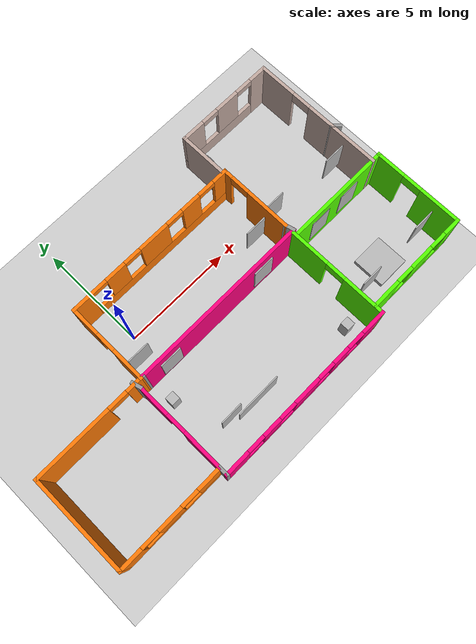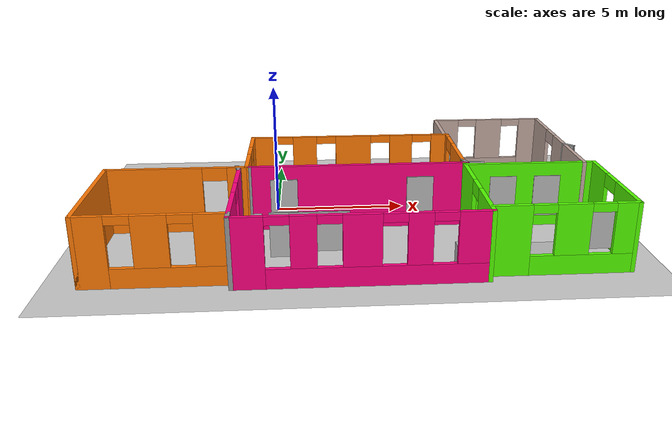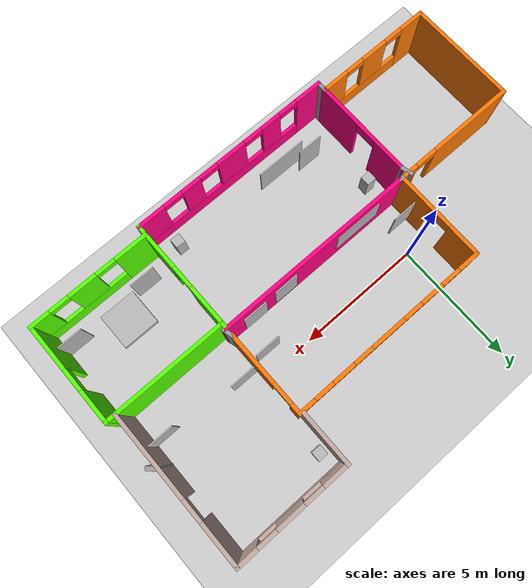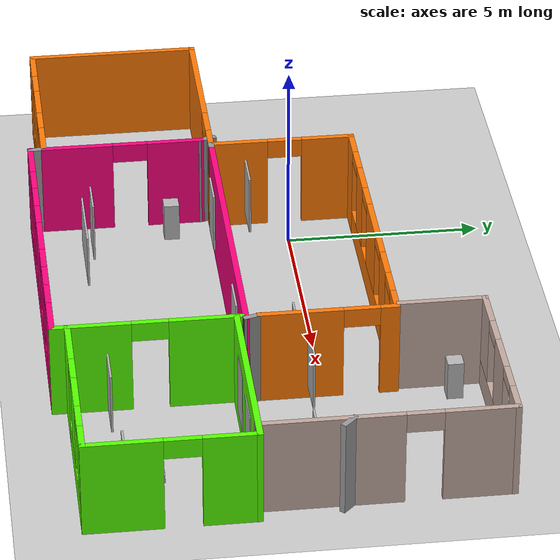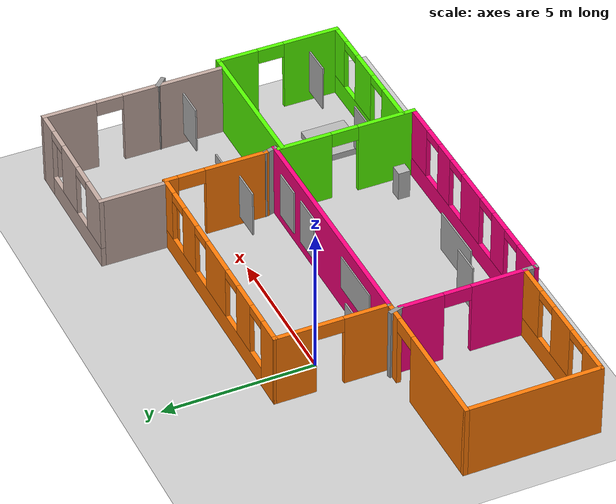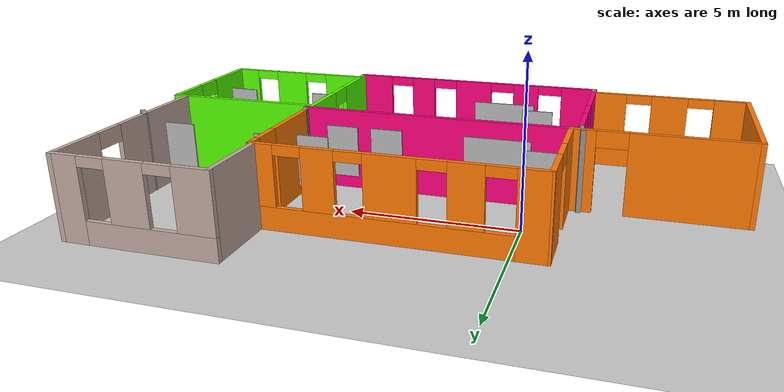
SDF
<sdf version="1.6">
 <world name="default">
  <model name="ground_plane">
   <static>1</static>
   <link name="link">
    <collision name="collision">
     <geometry><plane><normal>0 0 1</normal><size>100 100</size></plane></geometry>
     <surface><friction><ode><mu>100</mu><mu2>50</mu2></ode></friction></surface>
    </collision>
    <visual name="visual">
     <cast_shadows>0</cast_shadows>
     <geometry><plane><normal>0 0 1</normal><size>100 100</size></plane></geometry>
     <material>
      <script><uri>file://media/materials/scripts/gazebo.material</uri><name>Gazebo/Grey</name></script>
     </material>
    </visual>
   </link>
  </model>
  <model name="gallery2">
   <pose>17.6734 2.86394 0 0 -0 0</pose>
   <link name="Wall_0">
    <pose>-14.628 -1.09561 0 0 -0 0</pose>
    <visual name="Wall_0_Visual_0">
     <pose>-3.66723 0 1.25 0 -0 0</pose>
     <geometry><box><size>0.91554 0.15 2.5</size></box></geometry>
     <material>
      <script><uri>file://media/materials/scripts/gazebo.material</uri><name>Gazebo/Grey</name></script>
      <ambient>0.996078 0.47451 0.0196078 1</ambient>
     </material>
     <meta><layer>0</layer></meta>
    </visual>
    <collision name="Wall_0_Collision_0">
     <geometry><box><size>0.91554 0.15 2.5</size></box></geometry>
     <pose>-3.66723 0 1.25 0 -0 0</pose>
    </collision>
    <visual name="Wall_0_Visual_1">
     <pose>0.45777 0 0.35 0 -0 0</pose>
     <geometry><box><size>7.33446 0.15 0.7</size></box></geometry>
     <material>
      <script><uri>file://media/materials/scripts/gazebo.material</uri><name>Gazebo/Grey</name></script>
      <ambient>0.996078 0.47451 0.0196078 1</ambient>
     </material>
     <meta><layer>0</layer></meta>
    </visual>
    <collision name="Wall_0_Collision_1">
     <geometry><box><size>7.33446 0.15 0.7</size></box></geometry>
     <pose>0.45777 0 0.35 0 -0 0</pose>
    </collision>
    <visual name="Wall_0_Visual_2">
     <pose>-1.91944 0 1.6 0 -0 0</pose>
     <geometry><box><size>0.980046 0.15 1.8</size></box></geometry>
     <material>
      <script><uri>file://media/materials/scripts/gazebo.material</uri><name>Gazebo/Grey</name></script>
      <ambient>0.996078 0.47451 0.0196078 1</ambient>
     </material>
     <meta><layer>0</layer></meta>
    </visual>
    <collision name="Wall_0_Collision_2">
     <geometry><box><size>0.980046 0.15 1.8</size></box></geometry>
     <pose>-1.91944 0 1.6 0 -0 0</pose>
    </collision>
    <visual name="Wall_0_Visual_3">
     <pose>0.103342 0 1.6 0 -0 0</pose>
     <geometry><box><size>1.46551 0.15 1.8</size></box></geometry>
     <material>
      <script><uri>file://media/materials/scripts/gazebo.material</uri><name>Gazebo/Grey</name></script>
      <ambient>0.996078 0.47451 0.0196078 1</ambient>
     </material>
     <meta><layer>0</layer></meta>
    </visual>
    <collision name="Wall_0_Collision_3">
     <geometry><box><size>1.46551 0.15 1.8</size></box></geometry>
     <pose>0.103342 0 1.6 0 -0 0</pose>
    </collision>
    <visual name="Wall_0_Visual_4">
     <pose>2.10589 0 1.6 0 -0 0</pose>
     <geometry><box><size>0.93959 0.15 1.8</size></box></geometry>
     <material>
      <script><uri>file://media/materials/scripts/gazebo.material</uri><name>Gazebo/Grey</name></script>
      <ambient>0.996078 0.47451 0.0196078 1</ambient>
     </material>
     <meta><layer>0</layer></meta>
    </visual>
    <collision name="Wall_0_Collision_4">
     <geometry><box><size>0.93959 0.15 1.8</size></box></geometry>
     <pose>2.10589 0 1.6 0 -0 0</pose>
    </collision>
    <visual name="Wall_0_Visual_5">
     <pose>3.75034 0 1.6 0 -0 0</pose>
     <geometry><box><size>0.749312 0.15 1.8</size></box></geometry>
     <material>
      <script><uri>file://media/materials/scripts/gazebo.material</uri><name>Gazebo/Grey</name></script>
      <ambient>0.996078 0.47451 0.0196078 1</ambient>
     </material>
     <meta><layer>0</layer></meta>
    </visual>
    <collision name="Wall_0_Collision_5">
     <geometry><box><size>0.749312 0.15 1.8</size></box></geometry>
     <pose>3.75034 0 1.6 0 -0 0</pose>
    </collision>
    <visual name="Wall_0_Visual_6">
     <pose>-2.80946 0 2.35 0 -0 0</pose>
     <geometry><box><size>0.8 0.15 0.3</size></box></geometry>
     <material>
      <script><uri>file://media/materials/scripts/gazebo.material</uri><name>Gazebo/Grey</name></script>
      <ambient>0.996078 0.47451 0.0196078 1</ambient>
     </material>
     <meta><layer>0</layer></meta>
    </visual>
    <collision name="Wall_0_Collision_6">
     <geometry><box><size>0.8 0.15 0.3</size></box></geometry>
     <pose>-2.80946 0 2.35 0 -0 0</pose>
    </collision>
    <visual name="Wall_0_Visual_7">
     <pose>-1.02941 0 2.35 0 -0 0</pose>
     <geometry><box><size>0.8 0.15 0.3</size></box></geometry>
     <material>
      <script><uri>file://media/materials/scripts/gazebo.material</uri><name>Gazebo/Grey</name></script>
      <ambient>0.996078 0.47451 0.0196078 1</ambient>
     </material>
     <meta><layer>0</layer></meta>
    </visual>
    <collision name="Wall_0_Collision_7">
     <geometry><box><size>0.8 0.15 0.3</size></box></geometry>
     <pose>-1.02941 0 2.35 0 -0 0</pose>
    </collision>
    <visual name="Wall_0_Visual_8">
     <pose>1.2361 0 2.35 0 -0 0</pose>
     <geometry><box><size>0.8 0.15 0.3</size></box></geometry>
     <material>
      <script><uri>file://media/materials/scripts/gazebo.material</uri><name>Gazebo/Grey</name></script>
      <ambient>0.996078 0.47451 0.0196078 1</ambient>
     </material>
     <meta><layer>0</layer></meta>
    </visual>
    <collision name="Wall_0_Collision_8">
     <geometry><box><size>0.8 0.15 0.3</size></box></geometry>
     <pose>1.2361 0 2.35 0 -0 0</pose>
    </collision>
    <visual name="Wall_0_Visual_9">
     <pose>2.97569 0 2.35 0 -0 0</pose>
     <geometry><box><size>0.8 0.15 0.3</size></box></geometry>
     <material>
      <script><uri>file://media/materials/scripts/gazebo.material</uri><name>Gazebo/Grey</name></script>
      <ambient>0.996078 0.47451 0.0196078 1</ambient>
     </material>
     <meta><layer>0</layer></meta>
    </visual>
    <collision name="Wall_0_Collision_9">
     <geometry><box><size>0.8 0.15 0.3</size></box></geometry>
     <pose>2.97569 0 2.35 0 -0 0</pose>
    </collision>
   </link>
   <link name="Wall_1">
    <pose>-10.578 -2.77061 0 0 0 -1.5708</pose>
    <visual name="Wall_1_Visual_0">
     <pose>-1.51054 0 1.25 0 -0 0</pose>
     <geometry><box><size>0.478926 0.15 2.5</size></box></geometry>
     <material>
      <script><uri>file://media/materials/scripts/gazebo.material</uri><name>Gazebo/Grey</name></script>
      <ambient>0.996078 0.47451 0.0196078 1</ambient>
     </material>
     <meta><layer>0</layer></meta>
    </visual>
    <collision name="Wall_1_Collision_0">
     <geometry><box><size>0.478926 0.15 2.5</size></box></geometry>
     <pose>-1.51054 0 1.25 0 -0 0</pose>
    </collision>
    <visual name="Wall_1_Visual_1">
     <pose>0.689463 0 1.25 0 -0 0</pose>
     <geometry><box><size>2.12107 0.15 2.5</size></box></geometry>
     <material>
      <script><uri>file://media/materials/scripts/gazebo.material</uri><name>Gazebo/Grey</name></script>
      <ambient>0.996078 0.47451 0.0196078 1</ambient>
     </material>
     <meta><layer>0</layer></meta>
    </visual>
    <collision name="Wall_1_Collision_1">
     <geometry><box><size>2.12107 0.15 2.5</size></box></geometry>
     <pose>0.689463 0 1.25 0 -0 0</pose>
    </collision>
    <visual name="Wall_1_Visual_2">
     <pose>-0.821074 0 2.25 0 -0 0</pose>
     <geometry><box><size>0.9 0.15 0.5</size></box></geometry>
     <material>
      <script><uri>file://media/materials/scripts/gazebo.material</uri><name>Gazebo/Grey</name></script>
      <ambient>0.996078 0.47451 0.0196078 1</ambient>
     </material>
     <meta><layer>0</layer></meta>
    </visual>
    <collision name="Wall_1_Collision_2">
     <geometry><box><size>0.9 0.15 0.5</size></box></geometry>
     <pose>-0.821074 0 2.25 0 -0 0</pose>
    </collision>
   </link>
   <link name="Wall_10">
    <pose>-18.9374 -7.08368 0 0 -0 1.5708</pose>
    <visual name="Wall_10_Visual_0">
     <pose>-1.19077 0 1.25 0 -0 0</pose>
     <geometry><box><size>1.86845 0.15 2.5</size></box></geometry>
     <material>
      <script><uri>file://media/materials/scripts/gazebo.material</uri><name>Gazebo/Grey</name></script>
      <ambient>1 0 0.498039 1</ambient>
     </material>
     <meta><layer>0</layer></meta>
    </visual>
    <collision name="Wall_10_Collision_0">
     <geometry><box><size>1.86845 0.15 2.5</size></box></geometry>
     <pose>-1.19077 0 1.25 0 -0 0</pose>
    </collision>
    <visual name="Wall_10_Visual_1">
     <pose>1.38423 0 1.25 0 -0 0</pose>
     <geometry><box><size>1.48155 0.15 2.5</size></box></geometry>
     <material>
      <script><uri>file://media/materials/scripts/gazebo.material</uri><name>Gazebo/Grey</name></script>
      <ambient>1 0 0.498039 1</ambient>
     </material>
     <meta><layer>0</layer></meta>
    </visual>
    <collision name="Wall_10_Collision_1">
     <geometry><box><size>1.48155 0.15 2.5</size></box></geometry>
     <pose>1.38423 0 1.25 0 -0 0</pose>
    </collision>
    <visual name="Wall_10_Visual_2">
     <pose>0.193449 0 2.25 0 -0 0</pose>
     <geometry><box><size>0.9 0.15 0.5</size></box></geometry>
     <material>
      <script><uri>file://media/materials/scripts/gazebo.material</uri><name>Gazebo/Grey</name></script>
      <ambient>1 0 0.498039 1</ambient>
     </material>
     <meta><layer>0</layer></meta>
    </visual>
    <collision name="Wall_10_Collision_2">
     <geometry><box><size>0.9 0.15 0.5</size></box></geometry>
     <pose>0.193449 0 2.25 0 -0 0</pose>
    </collision>
   </link>
   <link name="Wall_12">
    <collision name="Wall_12_Collision">
     <geometry><box><size>0.5 0.15 2.5</size></box></geometry>
     <pose>0 0 1.25 0 -0 0</pose>
    </collision>
    <visual name="Wall_12_Visual">
     <pose>0 0 1.25 0 -0 0</pose>
     <geometry><box><size>0.5 0.15 2.5</size></box></geometry>
     <material>
      <script><uri>file://media/materials/scripts/gazebo.material</uri><name>Gazebo/Grey</name></script>
      <ambient>1 1 1 1</ambient>
     </material>
     <meta><layer>0</layer></meta>
    </visual>
    <pose>-18.9827 -4.86465 0 0 -0 1.8326</pose>
   </link>
   <link name="Wall_14">
    <collision name="Wall_14_Collision">
     <geometry><box><size>0.5 0.15 2.5</size></box></geometry>
     <pose>0 0 1.25 0 -0 0</pose>
    </collision>
    <visual name="Wall_14_Visual">
     <pose>0 0 1.25 0 -0 0</pose>
     <geometry><box><size>0.5 0.15 2.5</size></box></geometry>
     <material>
      <script><uri>file://media/materials/scripts/gazebo.material</uri><name>Gazebo/Grey</name></script>
      <ambient>1 1 1 1</ambient>
     </material>
     <meta><layer>0</layer></meta>
    </visual>
    <pose>-18.9374 -9.30869 0 0 0 -1.5708</pose>
   </link>
   <link name="Wall_15">
    <pose>-14.7624 -9.48368 0 0 -0 0</pose>
    <visual name="Wall_15_Visual_0">
     <pose>-3.6591 0 1.25 0 -0 0</pose>
     <geometry><box><size>1.18181 0.15 2.5</size></box></geometry>
     <material>
      <script><uri>file://media/materials/scripts/gazebo.material</uri><name>Gazebo/Grey</name></script>
      <ambient>1 0 0.498039 1</ambient>
     </material>
     <meta><layer>0</layer></meta>
    </visual>
    <collision name="Wall_15_Collision_0">
     <geometry><box><size>1.18181 0.15 2.5</size></box></geometry>
     <pose>-3.6591 0 1.25 0 -0 0</pose>
    </collision>
    <visual name="Wall_15_Visual_1">
     <pose>0.590905 0 0.35 0 -0 0</pose>
     <geometry><box><size>7.31819 0.15 0.7</size></box></geometry>
     <material>
      <script><uri>file://media/materials/scripts/gazebo.material</uri><name>Gazebo/Grey</name></script>
      <ambient>1 0 0.498039 1</ambient>
     </material>
     <meta><layer>0</layer></meta>
    </visual>
    <collision name="Wall_15_Collision_1">
     <geometry><box><size>7.31819 0.15 0.7</size></box></geometry>
     <pose>0.590905 0 0.35 0 -0 0</pose>
    </collision>
    <visual name="Wall_15_Visual_2">
     <pose>-1.83885 0 1.6 0 -0 0</pose>
     <geometry><box><size>0.858678 0.15 1.8</size></box></geometry>
     <material>
      <script><uri>file://media/materials/scripts/gazebo.material</uri><name>Gazebo/Grey</name></script>
      <ambient>1 0 0.498039 1</ambient>
     </material>
     <meta><layer>0</layer></meta>
    </visual>
    <collision name="Wall_15_Collision_2">
     <geometry><box><size>0.858678 0.15 1.8</size></box></geometry>
     <pose>-1.83885 0 1.6 0 -0 0</pose>
    </collision>
    <visual name="Wall_15_Visual_3">
     <pose>0.021909 0 1.6 0 -0 0</pose>
     <geometry><box><size>1.26284 0.15 1.8</size></box></geometry>
     <material>
      <script><uri>file://media/materials/scripts/gazebo.material</uri><name>Gazebo/Grey</name></script>
      <ambient>1 0 0.498039 1</ambient>
     </material>
     <meta><layer>0</layer></meta>
    </visual>
    <collision name="Wall_15_Collision_3">
     <geometry><box><size>1.26284 0.15 1.8</size></box></geometry>
     <pose>0.021909 0 1.6 0 -0 0</pose>
    </collision>
    <visual name="Wall_15_Visual_4">
     <pose>1.86264 0 1.6 0 -0 0</pose>
     <geometry><box><size>0.818617 0.15 1.8</size></box></geometry>
     <material>
      <script><uri>file://media/materials/scripts/gazebo.material</uri><name>Gazebo/Grey</name></script>
      <ambient>1 0 0.498039 1</ambient>
     </material>
     <meta><layer>0</layer></meta>
    </visual>
    <collision name="Wall_15_Collision_4">
     <geometry><box><size>0.818617 0.15 1.8</size></box></geometry>
     <pose>1.86264 0 1.6 0 -0 0</pose>
    </collision>
    <visual name="Wall_15_Visual_5">
     <pose>3.66097 0 1.6 0 -0 0</pose>
     <geometry><box><size>1.17805 0.15 1.8</size></box></geometry>
     <material>
      <script><uri>file://media/materials/scripts/gazebo.material</uri><name>Gazebo/Grey</name></script>
      <ambient>1 0 0.498039 1</ambient>
     </material>
     <meta><layer>0</layer></meta>
    </visual>
    <collision name="Wall_15_Collision_5">
     <geometry><box><size>1.17805 0.15 1.8</size></box></geometry>
     <pose>3.66097 0 1.6 0 -0 0</pose>
    </collision>
    <visual name="Wall_15_Visual_6">
     <pose>-2.66819 0 2.35 0 -0 0</pose>
     <geometry><box><size>0.8 0.15 0.3</size></box></geometry>
     <material>
      <script><uri>file://media/materials/scripts/gazebo.material</uri><name>Gazebo/Grey</name></script>
      <ambient>1 0 0.498039 1</ambient>
     </material>
     <meta><layer>0</layer></meta>
    </visual>
    <collision name="Wall_15_Collision_6">
     <geometry><box><size>0.8 0.15 0.3</size></box></geometry>
     <pose>-2.66819 0 2.35 0 -0 0</pose>
    </collision>
    <visual name="Wall_15_Visual_7">
     <pose>-1.00951 0 2.35 0 -0 0</pose>
     <geometry><box><size>0.8 0.15 0.3</size></box></geometry>
     <material>
      <script><uri>file://media/materials/scripts/gazebo.material</uri><name>Gazebo/Grey</name></script>
      <ambient>1 0 0.498039 1</ambient>
     </material>
     <meta><layer>0</layer></meta>
    </visual>
    <collision name="Wall_15_Collision_7">
     <geometry><box><size>0.8 0.15 0.3</size></box></geometry>
     <pose>-1.00951 0 2.35 0 -0 0</pose>
    </collision>
    <visual name="Wall_15_Visual_8">
     <pose>1.05333 0 2.35 0 -0 0</pose>
     <geometry><box><size>0.8 0.15 0.3</size></box></geometry>
     <material>
      <script><uri>file://media/materials/scripts/gazebo.material</uri><name>Gazebo/Grey</name></script>
      <ambient>1 0 0.498039 1</ambient>
     </material>
     <meta><layer>0</layer></meta>
    </visual>
    <collision name="Wall_15_Collision_8">
     <geometry><box><size>0.8 0.15 0.3</size></box></geometry>
     <pose>1.05333 0 2.35 0 -0 0</pose>
    </collision>
    <visual name="Wall_15_Visual_9">
     <pose>2.67195 0 2.35 0 -0 0</pose>
     <geometry><box><size>0.8 0.15 0.3</size></box></geometry>
     <material>
      <script><uri>file://media/materials/scripts/gazebo.material</uri><name>Gazebo/Grey</name></script>
      <ambient>1 0 0.498039 1</ambient>
     </material>
     <meta><layer>0</layer></meta>
    </visual>
    <collision name="Wall_15_Collision_9">
     <geometry><box><size>0.8 0.15 0.3</size></box></geometry>
     <pose>2.67195 0 2.35 0 -0 0</pose>
    </collision>
   </link>
   <link name="Wall_16">
    <pose>-10.5874 -7.18368 0 0 -0 1.5708</pose>
    <visual name="Wall_16_Visual_0">
     <pose>-1.37565 0 1.25 0 -0 0</pose>
     <geometry><box><size>1.99871 0.15 2.5</size></box></geometry>
     <material>
      <script><uri>file://media/materials/scripts/gazebo.material</uri><name>Gazebo/Grey</name></script>
      <ambient>0.333333 1 0 1</ambient>
     </material>
     <meta><layer>0</layer></meta>
    </visual>
    <collision name="Wall_16_Collision_0">
     <geometry><box><size>1.99871 0.15 2.5</size></box></geometry>
     <pose>-1.37565 0 1.25 0 -0 0</pose>
    </collision>
    <visual name="Wall_16_Visual_1">
     <pose>1.44935 0 1.25 0 -0 0</pose>
     <geometry><box><size>1.85129 0.15 2.5</size></box></geometry>
     <material>
      <script><uri>file://media/materials/scripts/gazebo.material</uri><name>Gazebo/Grey</name></script>
      <ambient>0.333333 1 0 1</ambient>
     </material>
     <meta><layer>0</layer></meta>
    </visual>
    <collision name="Wall_16_Collision_1">
     <geometry><box><size>1.85129 0.15 2.5</size></box></geometry>
     <pose>1.44935 0 1.25 0 -0 0</pose>
    </collision>
    <visual name="Wall_16_Visual_2">
     <pose>0.073709 0 2.25 0 -0 0</pose>
     <geometry><box><size>0.9 0.15 0.5</size></box></geometry>
     <material>
      <script><uri>file://media/materials/scripts/gazebo.material</uri><name>Gazebo/Grey</name></script>
      <ambient>0.333333 1 0 1</ambient>
     </material>
     <meta><layer>0</layer></meta>
    </visual>
    <collision name="Wall_16_Collision_2">
     <geometry><box><size>0.9 0.15 0.5</size></box></geometry>
     <pose>0.073709 0 2.25 0 -0 0</pose>
    </collision>
   </link>
   <link name="Wall_19">
    <pose>-8.1376 -9.10606 0 0 -0 0</pose>
    <visual name="Wall_19_Visual_0">
     <pose>-1.79893 0 1.25 0 -0 0</pose>
     <geometry><box><size>1.40214 0.15 2.5</size></box></geometry>
     <material>
      <script><uri>file://media/materials/scripts/gazebo.material</uri><name>Gazebo/Grey</name></script>
      <ambient>0.333333 1 0 1</ambient>
     </material>
     <meta><layer>0</layer></meta>
    </visual>
    <collision name="Wall_19_Collision_0">
     <geometry><box><size>1.40214 0.15 2.5</size></box></geometry>
     <pose>-1.79893 0 1.25 0 -0 0</pose>
    </collision>
    <visual name="Wall_19_Visual_1">
     <pose>0.701072 0 0.35 0 -0 0</pose>
     <geometry><box><size>3.59786 0.15 0.7</size></box></geometry>
     <material>
      <script><uri>file://media/materials/scripts/gazebo.material</uri><name>Gazebo/Grey</name></script>
      <ambient>0.333333 1 0 1</ambient>
     </material>
     <meta><layer>0</layer></meta>
    </visual>
    <collision name="Wall_19_Collision_1">
     <geometry><box><size>3.59786 0.15 0.7</size></box></geometry>
     <pose>0.701072 0 0.35 0 -0 0</pose>
    </collision>
    <visual name="Wall_19_Visual_2">
     <pose>0.279145 0 1.6 0 -0 0</pose>
     <geometry><box><size>1.154 0.15 1.8</size></box></geometry>
     <material>
      <script><uri>file://media/materials/scripts/gazebo.material</uri><name>Gazebo/Grey</name></script>
      <ambient>0.333333 1 0 1</ambient>
     </material>
     <meta><layer>0</layer></meta>
    </visual>
    <collision name="Wall_19_Collision_2">
     <geometry><box><size>1.154 0.15 1.8</size></box></geometry>
     <pose>0.279145 0 1.6 0 -0 0</pose>
    </collision>
    <visual name="Wall_19_Visual_3">
     <pose>2.07807 0 1.6 0 -0 0</pose>
     <geometry><box><size>0.843853 0.15 1.8</size></box></geometry>
     <material>
      <script><uri>file://media/materials/scripts/gazebo.material</uri><name>Gazebo/Grey</name></script>
      <ambient>0.333333 1 0 1</ambient>
     </material>
     <meta><layer>0</layer></meta>
    </visual>
    <collision name="Wall_19_Collision_3">
     <geometry><box><size>0.843853 0.15 1.8</size></box></geometry>
     <pose>2.07807 0 1.6 0 -0 0</pose>
    </collision>
    <visual name="Wall_19_Visual_4">
     <pose>-0.697857 0 2.35 0 -0 0</pose>
     <geometry><box><size>0.8 0.15 0.3</size></box></geometry>
     <material>
      <script><uri>file://media/materials/scripts/gazebo.material</uri><name>Gazebo/Grey</name></script>
      <ambient>0.333333 1 0 1</ambient>
     </material>
     <meta><layer>0</layer></meta>
    </visual>
    <collision name="Wall_19_Collision_4">
     <geometry><box><size>0.8 0.15 0.3</size></box></geometry>
     <pose>-0.697857 0 2.35 0 -0 0</pose>
    </collision>
    <visual name="Wall_19_Visual_5">
     <pose>1.25615 0 2.35 0 -0 0</pose>
     <geometry><box><size>0.8 0.15 0.3</size></box></geometry>
     <material>
      <script><uri>file://media/materials/scripts/gazebo.material</uri><name>Gazebo/Grey</name></script>
      <ambient>0.333333 1 0 1</ambient>
     </material>
     <meta><layer>0</layer></meta>
    </visual>
    <collision name="Wall_19_Collision_5">
     <geometry><box><size>0.8 0.15 0.3</size></box></geometry>
     <pose>1.25615 0 2.35 0 -0 0</pose>
    </collision>
   </link>
   <link name="Wall_2">
    <collision name="Wall_2_Collision">
     <geometry><box><size>0.5 0.15 2.5</size></box></geometry>
     <pose>0 0 1.25 0 -0 0</pose>
    </collision>
    <visual name="Wall_2_Visual">
     <pose>0 0 1.25 0 -0 0</pose>
     <geometry><box><size>0.5 0.15 2.5</size></box></geometry>
     <material>
      <script><uri>file://media/materials/scripts/gazebo.material</uri><name>Gazebo/Grey</name></script>
      <ambient>1 1 1 1</ambient>
     </material>
     <meta><layer>0</layer></meta>
    </visual>
    <pose>-10.5327 -4.61465 0 0 0 -1.309</pose>
   </link>
   <link name="Wall_20">
    <pose>-5.7126 -7.05606 0 0 -0 1.5708</pose>
    <visual name="Wall_20_Visual_0">
     <pose>-1.15486 0 1.25 0 -0 0</pose>
     <geometry><box><size>1.94029 0.15 2.5</size></box></geometry>
     <material>
      <script><uri>file://media/materials/scripts/gazebo.material</uri><name>Gazebo/Grey</name></script>
      <ambient>0.333333 1 0 1</ambient>
     </material>
     <meta><layer>0</layer></meta>
    </visual>
    <collision name="Wall_20_Collision_0">
     <geometry><box><size>1.94029 0.15 2.5</size></box></geometry>
     <pose>-1.15486 0 1.25 0 -0 0</pose>
    </collision>
    <visual name="Wall_20_Visual_1">
     <pose>1.42014 0 1.25 0 -0 0</pose>
     <geometry><box><size>1.40971 0.15 2.5</size></box></geometry>
     <material>
      <script><uri>file://media/materials/scripts/gazebo.material</uri><name>Gazebo/Grey</name></script>
      <ambient>0.333333 1 0 1</ambient>
     </material>
     <meta><layer>0</layer></meta>
    </visual>
    <collision name="Wall_20_Collision_1">
     <geometry><box><size>1.40971 0.15 2.5</size></box></geometry>
     <pose>1.42014 0 1.25 0 -0 0</pose>
    </collision>
    <visual name="Wall_20_Visual_2">
     <pose>0.265286 0 2.25 0 -0 0</pose>
     <geometry><box><size>0.9 0.15 0.5</size></box></geometry>
     <material>
      <script><uri>file://media/materials/scripts/gazebo.material</uri><name>Gazebo/Grey</name></script>
      <ambient>0.333333 1 0 1</ambient>
     </material>
     <meta><layer>0</layer></meta>
    </visual>
    <collision name="Wall_20_Collision_2">
     <geometry><box><size>0.9 0.15 0.5</size></box></geometry>
     <pose>0.265286 0 2.25 0 -0 0</pose>
    </collision>
   </link>
   <link name="Wall_21">
    <collision name="Wall_21_Collision">
     <geometry><box><size>5 0.15 2.5</size></box></geometry>
     <pose>0 0 1.25 0 -0 0</pose>
    </collision>
    <visual name="Wall_21_Visual">
     <pose>0 0 1.25 0 -0 0</pose>
     <geometry><box><size>5 0.15 2.5</size></box></geometry>
     <material>
      <script><uri>file://media/materials/scripts/gazebo.material</uri><name>Gazebo/Grey</name></script>
      <ambient>0.333333 1 0 1</ambient>
     </material>
     <meta><layer>0</layer></meta>
    </visual>
    <pose>-8.1376 -5.00606 0 0 -0 3.14159</pose>
   </link>
   <link name="Wall_23">
    <pose>-6.08514 -1.96338 0 0 -0 1.5708</pose>
    <visual name="Wall_23_Visual_0">
     <pose>-1.35497 0 1.25 0 -0 0</pose>
     <geometry><box><size>3.54005 0.15 2.5</size></box></geometry>
     <material>
      <script><uri>file://media/materials/scripts/gazebo.material</uri><name>Gazebo/Grey</name></script>
      <ambient>0.760784 0.662745 0.627451 1</ambient>
     </material>
     <meta><layer>0</layer></meta>
    </visual>
    <collision name="Wall_23_Collision_0">
     <geometry><box><size>3.54005 0.15 2.5</size></box></geometry>
     <pose>-1.35497 0 1.25 0 -0 0</pose>
    </collision>
    <visual name="Wall_23_Visual_1">
     <pose>2.22003 0 1.25 0 -0 0</pose>
     <geometry><box><size>1.80995 0.15 2.5</size></box></geometry>
     <material>
      <script><uri>file://media/materials/scripts/gazebo.material</uri><name>Gazebo/Grey</name></script>
      <ambient>0.760784 0.662745 0.627451 1</ambient>
     </material>
     <meta><layer>0</layer></meta>
    </visual>
    <collision name="Wall_23_Collision_1">
     <geometry><box><size>1.80995 0.15 2.5</size></box></geometry>
     <pose>2.22003 0 1.25 0 -0 0</pose>
    </collision>
    <visual name="Wall_23_Visual_2">
     <pose>0.865054 0 2.25 0 -0 0</pose>
     <geometry><box><size>0.9 0.15 0.5</size></box></geometry>
     <material>
      <script><uri>file://media/materials/scripts/gazebo.material</uri><name>Gazebo/Grey</name></script>
      <ambient>0.760784 0.662745 0.627451 1</ambient>
     </material>
     <meta><layer>0</layer></meta>
    </visual>
    <collision name="Wall_23_Collision_2">
     <geometry><box><size>0.9 0.15 0.5</size></box></geometry>
     <pose>0.865054 0 2.25 0 -0 0</pose>
    </collision>
   </link>
   <link name="Wall_24">
    <pose>-8.38514 1.08662 0 0 -0 3.14159</pose>
    <visual name="Wall_24_Visual_0">
     <pose>-1.92999 0 1.25 0 -0 0</pose>
     <geometry><box><size>0.890024 0.15 2.5</size></box></geometry>
     <material>
      <script><uri>file://media/materials/scripts/gazebo.material</uri><name>Gazebo/Grey</name></script>
      <ambient>0.760784 0.662745 0.627451 1</ambient>
     </material>
     <meta><layer>0</layer></meta>
    </visual>
    <collision name="Wall_24_Collision_0">
     <geometry><box><size>0.890024 0.15 2.5</size></box></geometry>
     <pose>-1.92999 0 1.25 0 -0 0</pose>
    </collision>
    <visual name="Wall_24_Visual_1">
     <pose>0.445012 0 0.35 0 -0 0</pose>
     <geometry><box><size>3.85998 0.15 0.7</size></box></geometry>
     <material>
      <script><uri>file://media/materials/scripts/gazebo.material</uri><name>Gazebo/Grey</name></script>
      <ambient>0.760784 0.662745 0.627451 1</ambient>
     </material>
     <meta><layer>0</layer></meta>
    </visual>
    <collision name="Wall_24_Collision_1">
     <geometry><box><size>3.85998 0.15 0.7</size></box></geometry>
     <pose>0.445012 0 0.35 0 -0 0</pose>
    </collision>
    <visual name="Wall_24_Visual_2">
     <pose>-0.107974 0 1.6 0 -0 0</pose>
     <geometry><box><size>1.154 0.15 1.8</size></box></geometry>
     <material>
      <script><uri>file://media/materials/scripts/gazebo.material</uri><name>Gazebo/Grey</name></script>
      <ambient>0.760784 0.662745 0.627451 1</ambient>
     </material>
     <meta><layer>0</layer></meta>
    </visual>
    <collision name="Wall_24_Collision_2">
     <geometry><box><size>1.154 0.15 1.8</size></box></geometry>
     <pose>-0.107974 0 1.6 0 -0 0</pose>
    </collision>
    <visual name="Wall_24_Visual_3">
     <pose>1.82201 0 1.6 0 -0 0</pose>
     <geometry><box><size>1.10597 0.15 1.8</size></box></geometry>
     <material>
      <script><uri>file://media/materials/scripts/gazebo.material</uri><name>Gazebo/Grey</name></script>
      <ambient>0.760784 0.662745 0.627451 1</ambient>
     </material>
     <meta><layer>0</layer></meta>
    </visual>
    <collision name="Wall_24_Collision_3">
     <geometry><box><size>1.10597 0.15 1.8</size></box></geometry>
     <pose>1.82201 0 1.6 0 -0 0</pose>
    </collision>
    <visual name="Wall_24_Visual_4">
     <pose>-1.08498 0 2.35 0 -0 0</pose>
     <geometry><box><size>0.8 0.15 0.3</size></box></geometry>
     <material>
      <script><uri>file://media/materials/scripts/gazebo.material</uri><name>Gazebo/Grey</name></script>
      <ambient>0.760784 0.662745 0.627451 1</ambient>
     </material>
     <meta><layer>0</layer></meta>
    </visual>
    <collision name="Wall_24_Collision_4">
     <geometry><box><size>0.8 0.15 0.3</size></box></geometry>
     <pose>-1.08498 0 2.35 0 -0 0</pose>
    </collision>
    <visual name="Wall_24_Visual_5">
     <pose>0.869028 0 2.35 0 -0 0</pose>
     <geometry><box><size>0.8 0.15 0.3</size></box></geometry>
     <material>
      <script><uri>file://media/materials/scripts/gazebo.material</uri><name>Gazebo/Grey</name></script>
      <ambient>0.760784 0.662745 0.627451 1</ambient>
     </material>
     <meta><layer>0</layer></meta>
    </visual>
    <collision name="Wall_24_Collision_5">
     <geometry><box><size>0.8 0.15 0.3</size></box></geometry>
     <pose>0.869028 0 2.35 0 -0 0</pose>
    </collision>
   </link>
   <link name="Wall_25">
    <collision name="Wall_25_Collision">
     <geometry><box><size>2.25 0.15 2.5</size></box></geometry>
     <pose>0 0 1.25 0 -0 0</pose>
    </collision>
    <visual name="Wall_25_Visual">
     <pose>0 0 1.25 0 -0 0</pose>
     <geometry><box><size>2.25 0.15 2.5</size></box></geometry>
     <material>
      <script><uri>file://media/materials/scripts/gazebo.material</uri><name>Gazebo/Grey</name></script>
      <ambient>0.760784 0.662745 0.627451 1</ambient>
     </material>
     <meta><layer>0</layer></meta>
    </visual>
    <pose>-10.6851 0.036615 0 0 0 -1.5708</pose>
   </link>
   <link name="Wall_3">
    <collision name="Wall_3_Collision">
     <geometry><box><size>8.25 0.15 2.5</size></box></geometry>
     <pose>0 0 1.25 0 -0 0</pose>
    </collision>
    <visual name="Wall_3_Visual">
     <pose>0 0 1.25 0 -0 0</pose>
     <geometry><box><size>8.25 0.15 2.5</size></box></geometry>
     <material>
      <script><uri>file://media/materials/scripts/gazebo.material</uri><name>Gazebo/Grey</name></script>
      <ambient>1 0 0.498039 1</ambient>
     </material>
     <meta><layer>0</layer></meta>
    </visual>
    <pose>-14.5374 -4.78369 0 0 -0 3.14159</pose>
   </link>
   <link name="Wall_31">
    <collision name="Wall_31_Collision">
     <geometry><box><size>0.5 0.15 2.5</size></box></geometry>
     <pose>0 0 1.25 0 -0 0</pose>
    </collision>
    <visual name="Wall_31_Visual">
     <pose>0 0 1.25 0 -0 0</pose>
     <geometry><box><size>0.5 0.15 2.5</size></box></geometry>
     <material>
      <script><uri>file://media/materials/scripts/gazebo.material</uri><name>Gazebo/Grey</name></script>
      <ambient>1 1 1 1</ambient>
     </material>
     <meta><layer>0</layer></meta>
    </visual>
    <pose>-5.95889 -2.88964 0 0 -0 2.35619</pose>
   </link>
   <link name="Wall_4">
    <collision name="Wall_4_Collision">
     <geometry><box><size>0.25 0.15 2.5</size></box></geometry>
     <pose>0 0 1.25 0 -0 0</pose>
    </collision>
    <visual name="Wall_4_Visual">
     <pose>0 0 1.25 0 -0 0</pose>
     <geometry><box><size>0.25 0.15 2.5</size></box></geometry>
     <material>
      <script><uri>file://media/materials/scripts/gazebo.material</uri><name>Gazebo/Grey</name></script>
      <ambient>1 1 1 1</ambient>
     </material>
     <meta><layer>0</layer></meta>
    </visual>
    <pose>-18.6374 -4.78369 0 0 -0 3.14159</pose>
   </link>
   <link name="Wall_5">
    <pose>-18.6827 -2.93965 0 0 -0 1.56824</pose>
    <visual name="Wall_5_Visual_0">
     <pose>-1.14163 0 1.25 0 -0 0</pose>
     <geometry><box><size>1.55482 0.15 2.5</size></box></geometry>
     <material>
      <script><uri>file://media/materials/scripts/gazebo.material</uri><name>Gazebo/Grey</name></script>
      <ambient>0.996078 0.47451 0.0196078 1</ambient>
     </material>
     <meta><layer>0</layer></meta>
    </visual>
    <collision name="Wall_5_Collision_0">
     <geometry><box><size>1.55482 0.15 2.5</size></box></geometry>
     <pose>-1.14163 0 1.25 0 -0 0</pose>
    </collision>
    <visual name="Wall_5_Visual_1">
     <pose>1.22741 0 1.25 0 -0 0</pose>
     <geometry><box><size>1.38326 0.15 2.5</size></box></geometry>
     <material>
      <script><uri>file://media/materials/scripts/gazebo.material</uri><name>Gazebo/Grey</name></script>
      <ambient>0.996078 0.47451 0.0196078 1</ambient>
     </material>
     <meta><layer>0</layer></meta>
    </visual>
    <collision name="Wall_5_Collision_1">
     <geometry><box><size>1.38326 0.15 2.5</size></box></geometry>
     <pose>1.22741 0 1.25 0 -0 0</pose>
    </collision>
    <visual name="Wall_5_Visual_2">
     <pose>0.085778 0 2.25 0 -0 0</pose>
     <geometry><box><size>0.9 0.15 0.5</size></box></geometry>
     <material>
      <script><uri>file://media/materials/scripts/gazebo.material</uri><name>Gazebo/Grey</name></script>
      <ambient>0.996078 0.47451 0.0196078 1</ambient>
     </material>
     <meta><layer>0</layer></meta>
    </visual>
    <collision name="Wall_5_Collision_2">
     <geometry><box><size>0.9 0.15 0.5</size></box></geometry>
     <pose>0.085778 0 2.25 0 -0 0</pose>
    </collision>
   </link>
   <link name="Wall_7">
    <pose>-21.2374 -4.78369 0 0 -0 3.14159</pose>
    <visual name="Wall_7_Visual_0">
     <pose>-2.23135 0 1.25 0 -0 0</pose>
     <geometry><box><size>0.787299 0.15 2.5</size></box></geometry>
     <material>
      <script><uri>file://media/materials/scripts/gazebo.material</uri><name>Gazebo/Grey</name></script>
      <ambient>0.996078 0.47451 0.0196078 1</ambient>
     </material>
     <meta><layer>0</layer></meta>
    </visual>
    <collision name="Wall_7_Collision_0">
     <geometry><box><size>0.787299 0.15 2.5</size></box></geometry>
     <pose>-2.23135 0 1.25 0 -0 0</pose>
    </collision>
    <visual name="Wall_7_Visual_1">
     <pose>0.843649 0 1.25 0 -0 0</pose>
     <geometry><box><size>3.5627 0.15 2.5</size></box></geometry>
     <material>
      <script><uri>file://media/materials/scripts/gazebo.material</uri><name>Gazebo/Grey</name></script>
      <ambient>0.996078 0.47451 0.0196078 1</ambient>
     </material>
     <meta><layer>0</layer></meta>
    </visual>
    <collision name="Wall_7_Collision_1">
     <geometry><box><size>3.5627 0.15 2.5</size></box></geometry>
     <pose>0.843649 0 1.25 0 -0 0</pose>
    </collision>
    <visual name="Wall_7_Visual_2">
     <pose>-1.3877 0 2.25 0 -0 0</pose>
     <geometry><box><size>0.9 0.15 0.5</size></box></geometry>
     <material>
      <script><uri>file://media/materials/scripts/gazebo.material</uri><name>Gazebo/Grey</name></script>
      <ambient>0.996078 0.47451 0.0196078 1</ambient>
     </material>
     <meta><layer>0</layer></meta>
    </visual>
    <collision name="Wall_7_Collision_2">
     <geometry><box><size>0.9 0.15 0.5</size></box></geometry>
     <pose>-1.3877 0 2.25 0 -0 0</pose>
    </collision>
   </link>
   <link name="Wall_8">
    <collision name="Wall_8_Collision">
     <geometry><box><size>4.5 0.15 2.5</size></box></geometry>
     <pose>0 0 1.25 0 -0 0</pose>
    </collision>
    <visual name="Wall_8_Visual">
     <pose>0 0 1.25 0 -0 0</pose>
     <geometry><box><size>4.5 0.15 2.5</size></box></geometry>
     <material>
      <script><uri>file://media/materials/scripts/gazebo.material</uri><name>Gazebo/Grey</name></script>
      <ambient>0.996078 0.47451 0.0196078 1</ambient>
     </material>
     <meta><layer>0</layer></meta>
    </visual>
    <pose>-23.7874 -6.95868 0 0 0 -1.5708</pose>
   </link>
   <link name="Wall_9">
    <pose>-21.3624 -9.13368 0 0 -0 0</pose>
    <visual name="Wall_9_Visual_0">
     <pose>-1.95189 0 1.25 0 -0 0</pose>
     <geometry><box><size>1.09623 0.15 2.5</size></box></geometry>
     <material>
      <script><uri>file://media/materials/scripts/gazebo.material</uri><name>Gazebo/Grey</name></script>
      <ambient>0.996078 0.47451 0.0196078 1</ambient>
     </material>
     <meta><layer>0</layer></meta>
    </visual>
    <collision name="Wall_9_Collision_0">
     <geometry><box><size>1.09623 0.15 2.5</size></box></geometry>
     <pose>-1.95189 0 1.25 0 -0 0</pose>
    </collision>
    <visual name="Wall_9_Visual_1">
     <pose>0.548115 0 0.35 0 -0 0</pose>
     <geometry><box><size>3.90377 0.15 0.7</size></box></geometry>
     <material>
      <script><uri>file://media/materials/scripts/gazebo.material</uri><name>Gazebo/Grey</name></script>
      <ambient>0.996078 0.47451 0.0196078 1</ambient>
     </material>
     <meta><layer>0</layer></meta>
    </visual>
    <collision name="Wall_9_Collision_1">
     <geometry><box><size>3.90377 0.15 0.7</size></box></geometry>
     <pose>0.548115 0 0.35 0 -0 0</pose>
    </collision>
    <visual name="Wall_9_Visual_2">
     <pose>-0.032837 0 1.6 0 -0 0</pose>
     <geometry><box><size>1.14187 0.15 1.8</size></box></geometry>
     <material>
      <script><uri>file://media/materials/scripts/gazebo.material</uri><name>Gazebo/Grey</name></script>
      <ambient>0.996078 0.47451 0.0196078 1</ambient>
     </material>
     <meta><layer>0</layer></meta>
    </visual>
    <collision name="Wall_9_Collision_2">
     <geometry><box><size>1.14187 0.15 1.8</size></box></geometry>
     <pose>-0.032837 0 1.6 0 -0 0</pose>
    </collision>
    <visual name="Wall_9_Visual_3">
     <pose>1.91905 0 1.6 0 -0 0</pose>
     <geometry><box><size>1.1619 0.15 1.8</size></box></geometry>
     <material>
      <script><uri>file://media/materials/scripts/gazebo.material</uri><name>Gazebo/Grey</name></script>
      <ambient>0.996078 0.47451 0.0196078 1</ambient>
     </material>
     <meta><layer>0</layer></meta>
    </visual>
    <collision name="Wall_9_Collision_3">
     <geometry><box><size>1.1619 0.15 1.8</size></box></geometry>
     <pose>1.91905 0 1.6 0 -0 0</pose>
    </collision>
    <visual name="Wall_9_Visual_4">
     <pose>-1.00377 0 2.35 0 -0 0</pose>
     <geometry><box><size>0.8 0.15 0.3</size></box></geometry>
     <material>
      <script><uri>file://media/materials/scripts/gazebo.material</uri><name>Gazebo/Grey</name></script>
      <ambient>0.996078 0.47451 0.0196078 1</ambient>
     </material>
     <meta><layer>0</layer></meta>
    </visual>
    <collision name="Wall_9_Collision_4">
     <geometry><box><size>0.8 0.15 0.3</size></box></geometry>
     <pose>-1.00377 0 2.35 0 -0 0</pose>
    </collision>
    <visual name="Wall_9_Visual_5">
     <pose>0.938097 0 2.35 0 -0 0</pose>
     <geometry><box><size>0.8 0.15 0.3</size></box></geometry>
     <material>
      <script><uri>file://media/materials/scripts/gazebo.material</uri><name>Gazebo/Grey</name></script>
      <ambient>0.996078 0.47451 0.0196078 1</ambient>
     </material>
     <meta><layer>0</layer></meta>
    </visual>
    <collision name="Wall_9_Collision_5">
     <geometry><box><size>0.8 0.15 0.3</size></box></geometry>
     <pose>0.938097 0 2.35 0 -0 0</pose>
    </collision>
   </link>
   <static>1</static>
  </model>
  <include>
   <pose>4.52456 -1.82054 1.2 0 -0 0</pose>
   <name>room1_img2</name>
   <uri>model://leobot_gazebo/models/room1_img2</uri>
  </include>
  <include>
   <pose>6.42233 -0.626433 1.2 0 -0 0</pose>
   <name>room1_img3</name>
   <uri>model://leobot_gazebo/models/room1_img3</uri>
  </include>
  <include>
   <pose>-0.400298 -1.02543 1.2 0 -0 0</pose>
   <name>room1_img5</name>
   <uri>model://leobot_gazebo/models/room1_img5</uri>
  </include>
  <include>
   <pose>5.95339 -1.79939 1.2 0 -0 0</pose>
   <name>room1_img7</name>
   <uri>model://leobot_gazebo/models/room1_img7</uri>
  </include>
  <include>
   <pose>1.09431 -1.82822 1.4 0 -0 0</pose>
   <name>room1_img4</name>
   <uri>model://leobot_gazebo/models/room1_img4</uri>
  </include>
  <include>
   <pose>10.9819 -0.706517 1.2 0 -0 0</pose>
   <name>room1_img8</name>
   <uri>model://leobot_gazebo/models/room1_img8</uri>
  </include>
  <include>
   <pose>7.71446 -0.396252 1.2 0 -0 0</pose>
   <name>room1_img1</name>
   <uri>model://leobot_gazebo/models/room1_img1</uri>
  </include>
  <include>
   <pose>8.11461 -5.32346 1.2 0 -0 0</pose>
   <name>roomd_img2</name>
   <uri>model://leobot_gazebo/models/roomd_img2</uri>
  </include>
  <include>
   <pose>8.53273 -2.2072 1.2 0 -0 0</pose>
   <name>roomd_img3</name>
   <uri>model://leobot_gazebo/models/roomd_img3</uri>
  </include>
  <include>
   <pose>10.1972 -2.21613 1.2 0 -0 0</pose>
   <name>roome_img1</name>
   <uri>model://leobot_gazebo/models/roome_img1</uri>
  </include>
  <include>
   <pose>9.47894 -4.95329 0 0 -0 0</pose>
   <name>floor1</name>
   <uri>model://leobot_gazebo/models/floor1</uri>
  </include>
  <include>
   <pose>11.2968 -5.24067 1.2 0 -0 0</pose>
   <name>roome_img2</name>
   <uri>model://leobot_gazebo/models/roome_img2</uri>
  </include>
  <include>
   <pose>0.344633 -2.03861 1.2 0 -0 0</pose>
   <name>roomf_img1</name>
   <uri>model://leobot_gazebo/models/roomf_img1</uri>
  </include>
  <include>
   <pose>5.42454 -2.02182 1.2 0 -0 0</pose>
   <name>roomf_img4</name>
   <uri>model://leobot_gazebo/models/roomf_img4</uri>
  </include>
  <include>
   <pose>1.59926 -5.42401 1.4 0 -0 0</pose>
   <name>roomf_img2p_0</name>
   <uri>model://leobot_gazebo/models/roomf_img2p</uri>
  </include>
  <include>
   <pose>0.43893 -5.1628 1.2 0 -0 0</pose>
   <name>roomf_img3</name>
   <uri>model://leobot_gazebo/models/roomf_img3</uri>
  </include>
  <include>
   <pose>6.28623 -5.85346 0 0 -0 0</pose>
   <name>statuad_0</name>
   <uri>model://leobot_gazebo/models/statuad</uri>
  </include>
  <include>
   <pose>-0.65278 -3.02578 0 0 -0 0</pose>
   <name>statuaf</name>
   <uri>model://leobot_gazebo/models/statuaf</uri>
  </include>
  <include>
   <pose>7.40666 3.17977 0 0 -0 0</pose>
   <name>statuad_1</name>
   <uri>model://leobot_gazebo/models/statuad</uri>
  </include>
 </world>
</sdf>
